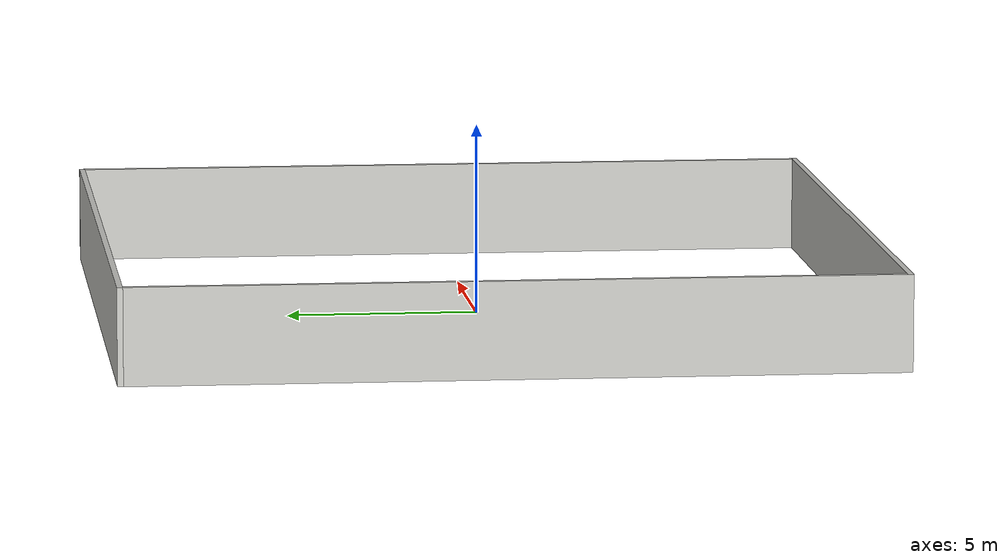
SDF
<?xml version='1.0'?>
<sdf version='1.6'>
  <model name='box_20'>
    <pose frame=''>0.009348 -0.007281 0 0 -0 0</pose>
    <link name='Wall_15'>
      <collision name='Wall_15_Collision'>
        <geometry>
          <box>
            <size>20 0.15 2.5</size>
          </box>
        </geometry>
        <pose frame=''>0 0 1.25 0 -0 0</pose>
      </collision>
      <visual name='Wall_15_Visual'>
        <pose frame=''>0 0 1.25 0 -0 0</pose>
        <geometry>
          <box>
            <size>20 0.15 2.5</size>
          </box>
        </geometry>
        <material>
          <script>
            <uri>file://media/materials/scripts/gazebo.material</uri>
            <name>Gazebo/CeilingTiled</name>
          </script>
          <ambient>1 1 1 1</ambient>
        </material>
        <meta>
          <layer>0</layer>
        </meta>
      </visual>
      <pose frame=''>-0 9.925 0 0 -0 3.14159</pose>
    </link>
    <link name='Wall_18'>
      <collision name='Wall_18_Collision'>
        <geometry>
          <box>
            <size>20 0.15 2.5</size>
          </box>
        </geometry>
        <pose frame=''>0 0 1.25 0 -0 0</pose>
      </collision>
      <visual name='Wall_18_Visual'>
        <pose frame=''>0 0 1.25 0 -0 0</pose>
        <geometry>
          <box>
            <size>20 0.15 2.5</size>
          </box>
        </geometry>
        <material>
          <script>
            <uri>file://media/materials/scripts/gazebo.material</uri>
            <name>Gazebo/CeilingTiled</name>
          </script>
          <ambient>1 1 1 1</ambient>
        </material>
        <meta>
          <layer>0</layer>
        </meta>
      </visual>
      <pose frame=''>-9.925 0 0 0 -0 -1.5708</pose>
    </link>
    <link name='Wall_21'>
      <collision name='Wall_21_Collision'>
        <geometry>
          <box>
            <size>20 0.15 2.5</size>
          </box>
        </geometry>
        <pose frame=''>0 0 1.25 0 -0 0</pose>
      </collision>
      <visual name='Wall_21_Visual'>
        <pose frame=''>0 0 1.25 0 -0 0</pose>
        <geometry>
          <box>
            <size>20 0.15 2.5</size>
          </box>
        </geometry>
        <material>
          <script>
            <uri>file://media/materials/scripts/gazebo.material</uri>
            <name>Gazebo/CeilingTiled</name>
          </script>
          <ambient>1 1 1 1</ambient>
        </material>
        <meta>
          <layer>0</layer>
        </meta>
      </visual>
      <pose frame=''>-0 -9.925 0 0 -0 0</pose>
    </link>
    <link name='Wall_22'>
      <collision name='Wall_22_Collision'>
        <geometry>
          <box>
            <size>20 0.15 2.5</size>
          </box>
        </geometry>
        <pose frame=''>0 0 1.25 0 -0 0</pose>
      </collision>
      <visual name='Wall_22_Visual'>
        <pose frame=''>0 0 1.25 0 -0 0</pose>
        <geometry>
          <box>
            <size>20 0.15 2.5</size>
          </box>
        </geometry>
        <material>
          <script>
            <uri>file://media/materials/scripts/gazebo.material</uri>
            <name>Gazebo/CeilingTiled</name>
          </script>
          <ambient>1 1 1 1</ambient>
        </material>
        <meta>
          <layer>0</layer>
        </meta>
      </visual>
      <pose frame=''>9.925 0 0 0 -0 1.5708</pose>
    </link>
    <static>1</static>
  </model>
</sdf>
